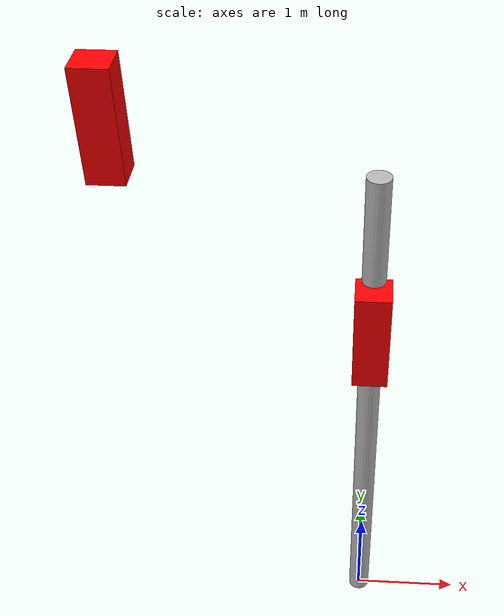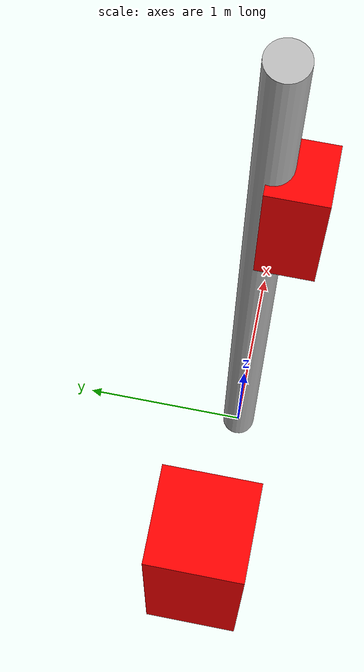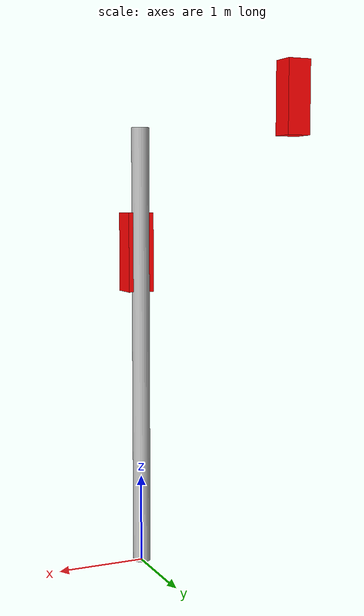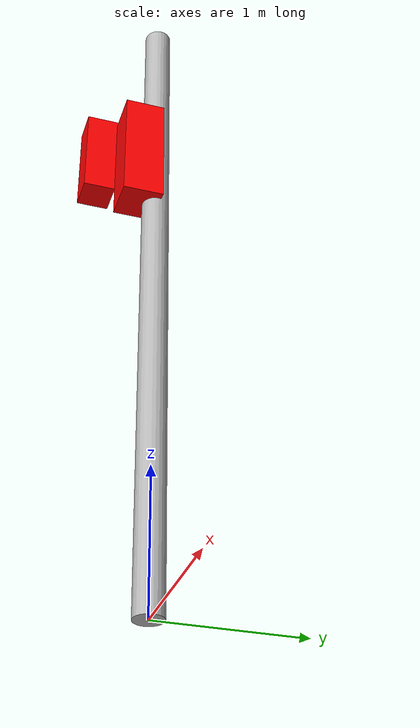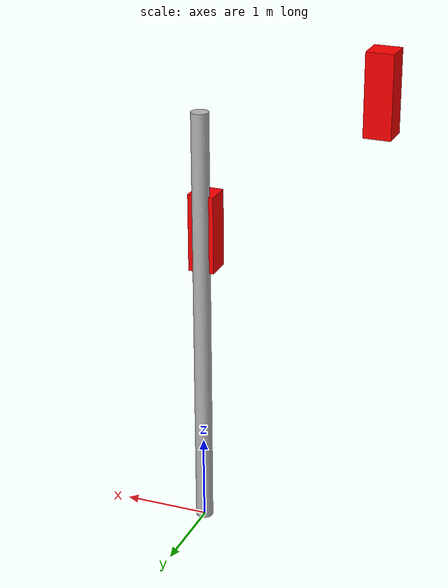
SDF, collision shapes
<?xml version="1.0" ?>
<sdf version="1.6">
  <model name="stop_light_post">
    <static>true</static>
    <link name="post_link">

      <collision name="post_collision">
        <pose>0 0 2.5 0 0 0</pose>
        <geometry>
          <cylinder>
            <radius>0.1</radius>
            <length>5</length>
          </cylinder>
        </geometry>
      </collision>

      <visual name="post_visual">
        <geometry>
          <mesh>
            <uri>model://stop_light_post/meshes/stop_light_post.obj</uri>
            <scale>0.01 0.01 0.01</scale>
          </mesh>
        </geometry>
      </visual>

    </link>

    <include>
      <name>right_light</name>
      <pose>0 -0.05 4.0 0 0 0</pose>
      <uri>model://stop_light</uri>
    </include>

    <include>
      <name>center_light</name>
      <pose>-2.0 0.04 5.82 0 0 0</pose>
      <uri>model://stop_light</uri>
    </include>

  </model>
</sdf>

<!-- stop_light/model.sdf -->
<sdf version="1.6">
  <model name="stop_light">

    <static>true</static>

    <!-- this pose can be overriden when including the light on another model -->
    <pose>0 0 1.0 0 0 0</pose>

    <link name="link">

      <collision name="collision">
        <pose>0 -0.08 -0.4 0 0 0</pose>
        <geometry>
          <box>
            <size>0.3 0.3 0.9</size>
          </box>
        </geometry>
      </collision>

      <visual name="frame">
        <geometry>
          <mesh>
            <uri>model://stop_light/meshes/stop_light.obj</uri>
            <scale>0.01 0.01 0.01</scale>
          </mesh>
        </geometry>
      </visual>

      <visual name="red">
        <pose>-0.001123 -0.082251 -0.147514 0 0 0</pose>
        <geometry>
          <sphere>
            <radius>0.1012</radius>
          </sphere>
        </geometry>
        <material>
          <script>
            <uri>model://stop_light/materials/scripts/</uri>
            <uri>model://stop_light/materials/textures/</uri>
            <name>StopLight/Light</name>
          </script>
          <ambient>1 0 0 1</ambient>
          <specular>1 0 0 1</specular>
          <!-- Turn a light on by uncommenting emissive -->
        </material>
      </visual>

      <visual name="yellow">
        <pose>-0.001123 -0.082251 -0.402 0 0 0</pose>
        <geometry>
          <sphere>
            <radius>0.1012</radius>
          </sphere>
        </geometry>
        <material>
          <script>
            <uri>model://stop_light/materials/scripts/</uri>
            <uri>model://stop_light/materials/textures/</uri>
            <name>StopLight/Light</name>
          </script>
          <ambient>1 1 0 1</ambient>
          <specular>1 1 0 1</specular>
        </material>
      </visual>

      <visual name="green">
        <pose>-0.001123 -0.082251 -0.655 0 0 0</pose>
        <geometry>
          <sphere>
            <radius>0.1012</radius>
          </sphere>
        </geometry>
        <material>
          <script>
            <uri>model://stop_light/materials/scripts/</uri>
            <uri>model://stop_light/materials/textures/</uri>
            <name>StopLight/Light</name>
          </script>
          <ambient>0 1 0 1</ambient>
          <specular>0 1 0 1</specular>
        </material>
      </visual>

    </link>
  </model>
</sdf>
